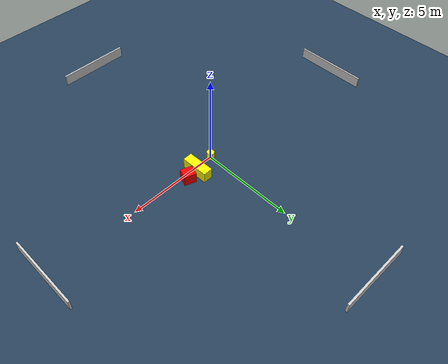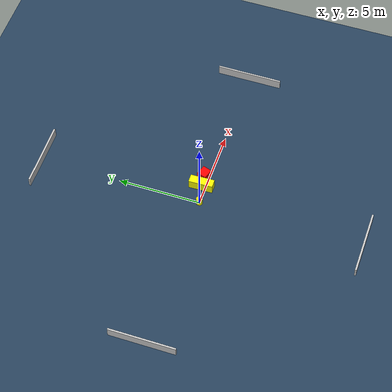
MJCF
<?xml version="1.0" ?>
<mujoco model="generated_environment">
  <option timestep="0.01" integrator="RK4" cone="elliptic"/>
  <default>
    <geom density="1"/>
  </default>
  <asset>
    <texture builtin="gradient" height="3072" name="skybox" rgb1="0.3 0.5 0.7" rgb2="0 0 0" type="skybox" width="512"/>
    <texture builtin="checker" height="300" name="groundplane" rgb1="0.2 0.3 0.4" rgb2="0.1 0.2 0.3" type="2d" width="300"/>
    <material name="groundplane" reflectance="0.2" texrepeat="5 5" texture="groundplane"/>
  </asset>
  <worldbody>
    <light dir="0 0 -1" directional="true" pos="0 0 1.5"/>
    <geom condim="3" friction="0.5 0.005 0.001" material="groundplane" name="floor" pos="0 0 0" size="0 0 0.05" type="plane"/>
    <body name="walls">
      <geom name="wall_1" condim="4" pos="-10.0 0.0 0.3" rgba="0.800000011920929 0.800000011920929 0.800000011920929 1.0" size="0.05 2.0 0.3" type="box"/>
      <geom name="wall_2" condim="4" pos="10.0 0.0 0.3" rgba="0.800000011920929 0.800000011920929 0.800000011920929 1.0" size="0.05 2.0 0.3" type="box"/>
      <geom name="wall_3" condim="4" pos="0.0 -10.0 0.3" rgba="0.800000011920929 0.800000011920929 0.800000011920929 1.0" size="2.0 0.05 0.3" type="box"/>
      <geom name="wall_4" condim="4" pos="0.0 10.0 0.3" rgba="0.800000011920929 0.800000011920929 0.800000011920929 1.0" size="2.0 0.05 0.3" type="box"/>
    </body>
    <body name="robot">
      <joint name="joint_x" type="slide" pos="0 0 0" axis="1 0 0"/>
      <joint name="joint_y" type="slide" pos="0 0 0" axis="0 1 0"/>
      <geom name="robot" type="cylinder" pos="0.0 0.0 0.2" size="0.2 0.2 0.0" mass="5.0" friction="1.0 0.005 0.0001" condim="4" rgba="1.0 1.0 0.0 1.0"/>
    </body>
    <body name="obstacle_1_movable">
      <geom name="obstacle_1_movable" condim="4" pos="1.15124418930181 0.2547605131579392 0.3" euler="0 0 181.4087214094528" friction="0.0 0.005 0.001" rgba="1.0 1.0 0.0 1.0" size="0.26028240570375905 0.7325822558147996 0.3" type="box" mass="0.1"/>
      <joint type="free"/>
    </body>
    <body name="obstacle_2_static">
      <geom name="obstacle_2_static" condim="4" pos="1.8326449908446052 0.3062216962294842 0.3" euler="0 0 160.96805209801067" friction="0.0 0.005 0.001" rgba="1.0 0.0 0.0 1.0" size="0.3170728044702312 0.28879187814749163 0.3" type="box"/>
    </body>
  </worldbody>
  <actuator>
    <motor name="actuator_x" joint="joint_x" gear="1" ctrlrange="-1 1"/>
    <motor name="actuator_y" joint="joint_y" gear="1" ctrlrange="-1 1"/>
  </actuator>
</mujoco>
